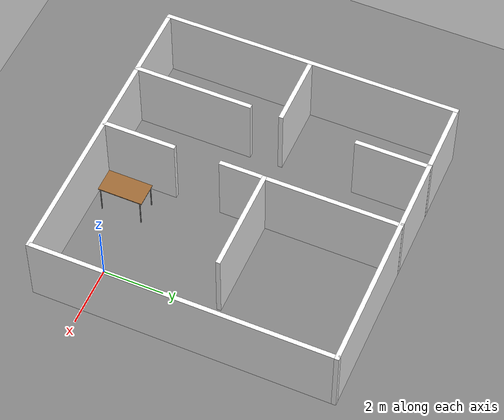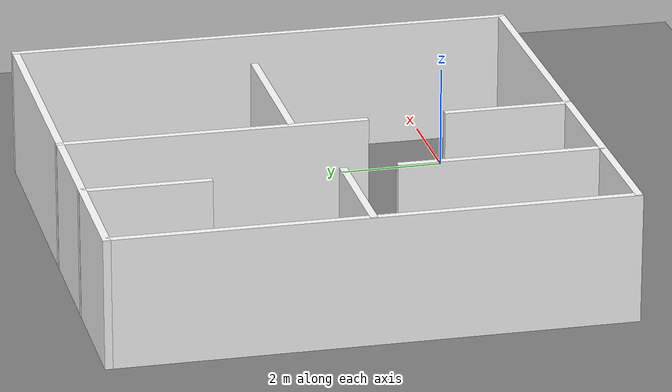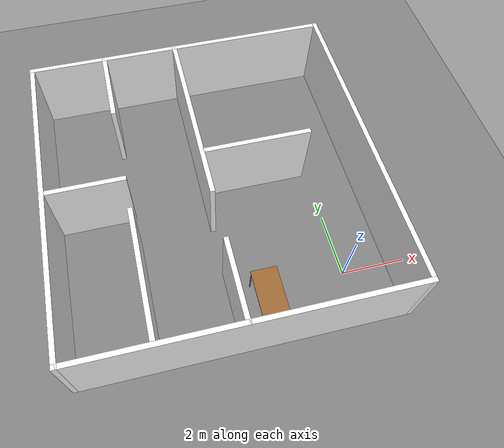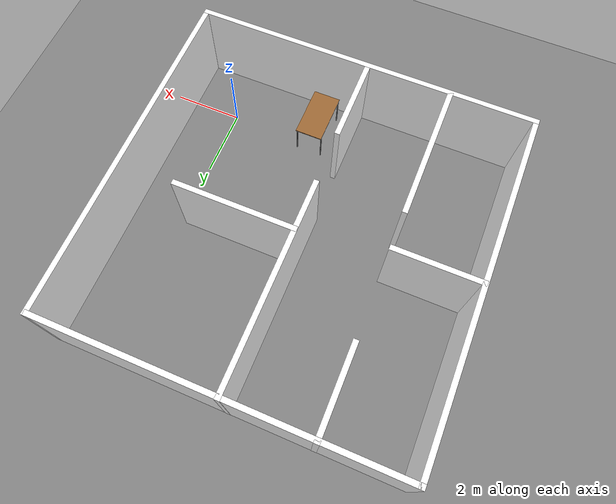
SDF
<sdf version='1.11'>
  <world name='empty'>
    <physics name='10ms' type='ode'>
      <max_step_size>0.01</max_step_size>
      <real_time_factor>1</real_time_factor>
      <real_time_update_rate>100</real_time_update_rate>
    </physics>
    <plugin name='gz::sim::systems::Physics' filename='gz-sim-physics-system'/>
    <plugin name='gz::sim::systems::UserCommands' filename='gz-sim-user-commands-system'/>
    <plugin name='gz::sim::systems::SceneBroadcaster' filename='gz-sim-scene-broadcaster-system'/>
    <plugin name='gz::sim::systems::Sensors' filename='libgz-sim-sensors-system.so'>
      <render_engine>ogre2</render_engine>
    </plugin>
    <plugin name='gz::sim::systems::Contact' filename='libgz-sim-contact-system.so'/>
    <scene>
      <ambient>1 1 1 1</ambient>
      <background>0.800000012 0.800000012 0.800000012 1</background>
      <shadows>true</shadows>
    </scene>
    <gravity>0 0 -9.8000000000000007</gravity>
    <magnetic_field>5.5644999999999998e-06 2.2875799999999999e-05 -4.2388400000000002e-05</magnetic_field>
    <atmosphere type='adiabatic'/>

    <model name='ground_plane'>
      <static>true</static>
      <link name='link'>
        <collision name='collision'>
          <geometry>
            <plane>
              <normal>0 0 1</normal>
              <size>100 100</size>
            </plane>
          </geometry>
          <surface>
            <friction>
              <ode/>
            </friction>
            <bounce/>
            <contact/>
          </surface>
        </collision>
        <visual name='visual'>
          <cast_shadows>false</cast_shadows>
          <geometry>
            <plane>
              <normal>0 0 1</normal>
              <size>100 100</size>
            </plane>
          </geometry>
          <material>
            <ambient>0.5 0.5 0.5 1</ambient>
            <diffuse>0.5 0.5 0.5 1</diffuse>
            <specular>0 0 0 1</specular>
          </material>
        </visual>
        <pose>0 0 0 0 0 0</pose>
        <inertial>
          <pose>0 0 0 0 0 0</pose>
          <mass>1</mass>
          <inertia>
            <ixx>1</ixx>
            <ixy>0</ixy>
            <ixz>0</ixz>
            <iyy>1</iyy>
            <iyz>0</iyz>
            <izz>1</izz>
          </inertia>
        </inertial>
        <enable_wind>false</enable_wind>
      </link>
      <pose>0 0 0 0 0 0</pose>
      <self_collide>false</self_collide>
    </model>

    <model name='Verlab'>
      <pose>-3.3421907424926758 3.3355200290679932 0 0 0 0</pose>
      <link name='Wall_1'>
        <collision name='Wall_1_Collision'>
          <geometry>
            <box>
              <size>10 0.14999999999999999 2.5</size>
            </box>
          </geometry>
          <pose>0 0 1.25 0 0 0</pose>
          <surface>
            <friction>
              <ode/>
            </friction>
            <bounce/>
            <contact/>
          </surface>
        </collision>
        <visual name='Wall_1_Visual'>
          <pose>0 0 1.25 0 0 0</pose>
          <geometry>
            <box>
              <size>10 0.14999999999999999 2.5</size>
            </box>
          </geometry>
          <material>
            <ambient>1 1 1 1</ambient>
            <diffuse>1 1 1 1</diffuse>
            <specular>0 0 0 1</specular>
          </material>
          <meta>
            <layer>0</layer>
          </meta>
        </visual>
        <pose>-0.119159 -4.9273600000000002 0 0 0 0</pose>
        <inertial>
          <pose>0 0 0 0 0 0</pose>
          <mass>1</mass>
          <inertia>
            <ixx>1</ixx>
            <ixy>0</ixy>
            <ixz>0</ixz>
            <iyy>1</iyy>
            <iyz>0</iyz>
            <izz>1</izz>
          </inertia>
        </inertial>
        <enable_wind>false</enable_wind>
      </link>
      <link name='Wall_11'>
        <collision name='Wall_11_Collision'>
          <geometry>
            <box>
              <size>2.5 0.14999999999999999 2.5</size>
            </box>
          </geometry>
          <pose>0 0 1.25 0 0 0</pose>
          <surface>
            <friction>
              <ode/>
            </friction>
            <bounce/>
            <contact/>
          </surface>
        </collision>
        <visual name='Wall_11_Visual'>
          <pose>0 0 1.25 0 0 0</pose>
          <geometry>
            <box>
              <size>2.5 0.14999999999999999 2.5</size>
            </box>
          </geometry>
          <material>
            <ambient>1 1 1 1</ambient>
            <diffuse>1 1 1 1</diffuse>
            <specular>0 0 0 1</specular>
          </material>
          <meta>
            <layer>0</layer>
          </meta>
        </visual>
        <pose>-2.6466599999999998 3.7523600000000004 0 0 0 -1.5708000000000013</pose>
        <inertial>
          <pose>0 0 0 0 0 0</pose>
          <mass>1</mass>
          <inertia>
            <ixx>1</ixx>
            <ixy>0</ixy>
            <ixz>0</ixz>
            <iyy>1</iyy>
            <iyz>0</iyz>
            <izz>1</izz>
          </inertia>
        </inertial>
        <enable_wind>false</enable_wind>
      </link>
      <link name='Wall_16'>
        <collision name='Wall_16_Collision'>
          <geometry>
            <box>
              <size>2.5 0.14999999999999999 2.5</size>
            </box>
          </geometry>
          <pose>0 0 1.25 0 0 0</pose>
          <surface>
            <friction>
              <ode/>
            </friction>
            <bounce/>
            <contact/>
          </surface>
        </collision>
        <visual name='Wall_16_Visual'>
          <pose>0 0 1.25 0 0 0</pose>
          <geometry>
            <box>
              <size>2.5 0.14999999999999999 2.5</size>
            </box>
          </geometry>
          <material>
            <ambient>1 1 1 1</ambient>
            <diffuse>1 1 1 1</diffuse>
            <specular>0 0 0 1</specular>
          </material>
          <meta>
            <layer>0</layer>
          </meta>
        </visual>
        <pose>-3.8406600000000006 0.028361999999999998 0 0 0 0</pose>
        <inertial>
          <pose>0 0 0 0 0 0</pose>
          <mass>1</mass>
          <inertia>
            <ixx>1</ixx>
            <ixy>0</ixy>
            <ixz>0</ixz>
            <iyy>1</iyy>
            <iyz>0</iyz>
            <izz>1</izz>
          </inertia>
        </inertial>
        <enable_wind>false</enable_wind>
      </link>
      <link name='Wall_18'>
        <collision name='Wall_18_Collision'>
          <geometry>
            <box>
              <size>4 0.14999999999999999 2.5</size>
            </box>
          </geometry>
          <pose>0 0 1.25 0 0 0</pose>
          <surface>
            <friction>
              <ode/>
            </friction>
            <bounce/>
            <contact/>
          </surface>
        </collision>
        <visual name='Wall_18_Visual'>
          <pose>0 0 1.25 0 0 0</pose>
          <geometry>
            <box>
              <size>4 0.14999999999999999 2.5</size>
            </box>
          </geometry>
          <material>
            <ambient>1 1 1 1</ambient>
            <diffuse>1 1 1 1</diffuse>
            <specular>0 0 0 1</specular>
          </material>
          <meta>
            <layer>0</layer>
          </meta>
        </visual>
        <pose>-2.6351599999999999 -2.9916399999999999 0 0 0 1.5708000000000013</pose>
        <inertial>
          <pose>0 0 0 0 0 0</pose>
          <mass>1</mass>
          <inertia>
            <ixx>1</ixx>
            <ixy>0</ixy>
            <ixz>0</ixz>
            <iyy>1</iyy>
            <iyz>0</iyz>
            <izz>1</izz>
          </inertia>
        </inertial>
        <enable_wind>false</enable_wind>
      </link>
      <link name='Wall_2'>
        <collision name='Wall_2_Collision'>
          <geometry>
            <box>
              <size>10 0.14999999999999999 2.5</size>
            </box>
          </geometry>
          <pose>0 0 1.25 0 0 0</pose>
          <surface>
            <friction>
              <ode/>
            </friction>
            <bounce/>
            <contact/>
          </surface>
        </collision>
        <visual name='Wall_2_Visual'>
          <pose>0 0 1.25 0 0 0</pose>
          <geometry>
            <box>
              <size>10 0.14999999999999999 2.5</size>
            </box>
          </geometry>
          <material>
            <ambient>1 1 1 1</ambient>
            <diffuse>1 1 1 1</diffuse>
            <specular>0 0 0 1</specular>
          </material>
          <meta>
            <layer>0</layer>
          </meta>
        </visual>
        <pose>4.8058399999999999 -0.0023620000000001973 0 0 0 1.5708000000000013</pose>
        <inertial>
          <pose>0 0 0 0 0 0</pose>
          <mass>1</mass>
          <inertia>
            <ixx>1</ixx>
            <ixy>0</ixy>
            <ixz>0</ixz>
            <iyy>1</iyy>
            <iyz>0</iyz>
            <izz>1</izz>
          </inertia>
        </inertial>
        <enable_wind>false</enable_wind>
      </link>
      <link name='Wall_24'>
        <collision name='Wall_24_Collision'>
          <geometry>
            <box>
              <size>6 0.14999999999999999 2.5</size>
            </box>
          </geometry>
          <pose>0 0 1.25 0 0 0</pose>
          <surface>
            <friction>
              <ode/>
            </friction>
            <bounce/>
            <contact/>
          </surface>
        </collision>
        <visual name='Wall_24_Visual'>
          <pose>0 0 1.25 0 0 0</pose>
          <geometry>
            <box>
              <size>6 0.14999999999999999 2.5</size>
            </box>
          </geometry>
          <material>
            <ambient>1 1 1 1</ambient>
            <diffuse>1 1 1 1</diffuse>
            <specular>0 0 0 1</specular>
          </material>
          <meta>
            <layer>0</layer>
          </meta>
        </visual>
        <pose>-0.24315700000000007 2.0023600000000004 0 0 0 -1.5708000000000013</pose>
        <inertial>
          <pose>0 0 0 0 0 0</pose>
          <mass>1</mass>
          <inertia>
            <ixx>1</ixx>
            <ixy>0</ixy>
            <ixz>0</ixz>
            <iyy>1</iyy>
            <iyz>0</iyz>
            <izz>1</izz>
          </inertia>
        </inertial>
        <enable_wind>false</enable_wind>
      </link>
      <link name='Wall_28'>
        <collision name='Wall_28_Collision'>
          <geometry>
            <box>
              <size>2.5 0.14999999999999999 2.5</size>
            </box>
          </geometry>
          <pose>0 0 1.25 0 0 0</pose>
          <surface>
            <friction>
              <ode/>
            </friction>
            <bounce/>
            <contact/>
          </surface>
        </collision>
        <visual name='Wall_28_Visual'>
          <pose>0 0 1.25 0 0 0</pose>
          <geometry>
            <box>
              <size>2.5 0.14999999999999999 2.5</size>
            </box>
          </geometry>
          <material>
            <ambient>1 1 1 1</ambient>
            <diffuse>1 1 1 1</diffuse>
            <specular>0 0 0 1</specular>
          </material>
          <meta>
            <layer>0</layer>
          </meta>
        </visual>
        <pose>-0.22015700000000038 -3.7416399999999999 0 0 0 1.5708000000000013</pose>
        <inertial>
          <pose>0 0 0 0 0 0</pose>
          <mass>1</mass>
          <inertia>
            <ixx>1</ixx>
            <ixy>0</ixy>
            <ixz>0</ixz>
            <iyy>1</iyy>
            <iyz>0</iyz>
            <izz>1</izz>
          </inertia>
        </inertial>
        <enable_wind>false</enable_wind>
      </link>
      <link name='Wall_3'>
        <collision name='Wall_3_Collision'>
          <geometry>
            <box>
              <size>10 0.14999999999999999 2.5</size>
            </box>
          </geometry>
          <pose>0 0 1.25 0 0 0</pose>
          <surface>
            <friction>
              <ode/>
            </friction>
            <bounce/>
            <contact/>
          </surface>
        </collision>
        <visual name='Wall_3_Visual'>
          <pose>0 0 1.25 0 0 0</pose>
          <geometry>
            <box>
              <size>10 0.14999999999999999 2.5</size>
            </box>
          </geometry>
          <material>
            <ambient>1 1 1 1</ambient>
            <diffuse>1 1 1 1</diffuse>
            <specular>0 0 0 1</specular>
          </material>
          <meta>
            <layer>0</layer>
          </meta>
        </visual>
        <pose>-0.11915899999999979 4.9226400000000012 0 0 0 3.1415899999999999</pose>
        <inertial>
          <pose>0 0 0 0 0 0</pose>
          <mass>1</mass>
          <inertia>
            <ixx>1</ixx>
            <ixy>0</ixy>
            <ixz>0</ixz>
            <iyy>1</iyy>
            <iyz>0</iyz>
            <izz>1</izz>
          </inertia>
        </inertial>
        <enable_wind>false</enable_wind>
      </link>
      <link name='Wall_36'>
        <collision name='Wall_36_Collision'>
          <geometry>
            <box>
              <size>3.5 0.14999999999999999 2.5</size>
            </box>
          </geometry>
          <pose>0 0 1.25 0 0 0</pose>
          <surface>
            <friction>
              <ode/>
            </friction>
            <bounce/>
            <contact/>
          </surface>
        </collision>
        <visual name='Wall_36_Visual'>
          <pose>0 0 1.25 0 0 0</pose>
          <geometry>
            <box>
              <size>3.5 0.14999999999999999 2.5</size>
            </box>
          </geometry>
          <material>
            <ambient>1 1 1 1</ambient>
            <diffuse>1 1 1 1</diffuse>
            <specular>0 0 0 1</specular>
          </material>
          <meta>
            <layer>0</layer>
          </meta>
        </visual>
        <pose>1.4433400000000001 0.47686200000000012 0 0 0 0</pose>
        <inertial>
          <pose>0 0 0 0 0 0</pose>
          <mass>1</mass>
          <inertia>
            <ixx>1</ixx>
            <ixy>0</ixy>
            <ixz>0</ixz>
            <iyy>1</iyy>
            <iyz>0</iyz>
            <izz>1</izz>
          </inertia>
        </inertial>
        <enable_wind>false</enable_wind>
      </link>
      <link name='Wall_4'>
        <collision name='Wall_4_Collision'>
          <geometry>
            <box>
              <size>10 0.14999999999999999 2.5</size>
            </box>
          </geometry>
          <pose>0 0 1.25 0 0 0</pose>
          <surface>
            <friction>
              <ode/>
            </friction>
            <bounce/>
            <contact/>
          </surface>
        </collision>
        <visual name='Wall_4_Visual'>
          <pose>0 0 1.25 0 0 0</pose>
          <geometry>
            <box>
              <size>10 0.14999999999999999 2.5</size>
            </box>
          </geometry>
          <material>
            <ambient>1 1 1 1</ambient>
            <diffuse>1 1 1 1</diffuse>
            <specular>0 0 0 1</specular>
          </material>
          <meta>
            <layer>0</layer>
          </meta>
        </visual>
        <pose>-5.044159999999998 -0.0023620000000001973 0 0 0 -1.5708000000000013</pose>
        <inertial>
          <pose>0 0 0 0 0 0</pose>
          <mass>1</mass>
          <inertia>
            <ixx>1</ixx>
            <ixy>0</ixy>
            <ixz>0</ixz>
            <iyy>1</iyy>
            <iyz>0</iyz>
            <izz>1</izz>
          </inertia>
        </inertial>
        <enable_wind>false</enable_wind>
      </link>
      <static>true</static>
      <self_collide>false</self_collide>
    </model>

    <model name='mesa'>
      <static>true</static>
      <link name='link'>
        <collision name='surface'>
          <pose>0 0 1 0 0 0</pose>
          <geometry>
            <box>
              <size>1.5 0.80000000000000004 0.029999999999999999</size>
            </box>
          </geometry>
          <surface>
            <friction>
              <ode>
                <mu>0.59999999999999998</mu>
                <mu2>0.59999999999999998</mu2>
              </ode>
            </friction>
            <bounce/>
            <contact/>
          </surface>
        </collision>
        <visual name='visual1'>
          <pose>0 0 1 0 0 0</pose>
          <geometry>
            <box>
              <size>1.5 0.80000000000000004 0.029999999999999999</size>
            </box>
          </geometry>
          <material>
            <ambient>0.3 0.2 0.1 1</ambient>
            <diffuse>0.6 0.4 0.2 1</diffuse>
            <specular>0.2 0.2 0.1 1</specular>
          </material>
        </visual>
        <collision name='front_left_leg'>
          <pose>0.68000000000000005 0.38 0.5 0 0 0</pose>
          <geometry>
            <cylinder>
              <radius>0.02</radius>
              <length>1</length>
            </cylinder>
          </geometry>
          <surface>
            <friction>
              <ode/>
            </friction>
            <bounce/>
            <contact/>
          </surface>
        </collision>
        <visual name='front_left_leg'>
          <pose>0.68000000000000005 0.38 0.5 0 0 0</pose>
          <geometry>
            <cylinder>
              <radius>0.02</radius>
              <length>1</length>
            </cylinder>
          </geometry>
          <material>
            <ambient>0.1 0.1 0.1 1</ambient>
            <diffuse>0.1 0.1 0.1 1</diffuse>
            <specular>0.1 0.1 0.1 1</specular>
          </material>
        </visual>
        <collision name='front_right_leg'>
          <pose>0.68000000000000005 -0.38 0.5 0 0 0</pose>
          <geometry>
            <cylinder>
              <radius>0.02</radius>
              <length>1</length>
            </cylinder>
          </geometry>
          <surface>
            <friction>
              <ode/>
            </friction>
            <bounce/>
            <contact/>
          </surface>
        </collision>
        <visual name='front_right_leg'>
          <pose>0.68000000000000005 -0.38 0.5 0 0 0</pose>
          <geometry>
            <cylinder>
              <radius>0.02</radius>
              <length>1</length>
            </cylinder>
          </geometry>
          <material>
            <ambient>0.1 0.1 0.1 1</ambient>
            <diffuse>0.1 0.1 0.1 1</diffuse>
            <specular>0.1 0.1 0.1 1</specular>
          </material>
        </visual>
        <collision name='back_right_leg'>
          <pose>-0.68000000000000005 -0.38 0.5 0 0 0</pose>
          <geometry>
            <cylinder>
              <radius>0.02</radius>
              <length>1</length>
            </cylinder>
          </geometry>
          <surface>
            <friction>
              <ode/>
            </friction>
            <bounce/>
            <contact/>
          </surface>
        </collision>
        <visual name='back_right_leg'>
          <pose>-0.68000000000000005 -0.38 0.5 0 0 0</pose>
          <geometry>
            <cylinder>
              <radius>0.02</radius>
              <length>1</length>
            </cylinder>
          </geometry>
          <material>
            <ambient>0.1 0.1 0.1 1</ambient>
            <diffuse>0.1 0.1 0.1 1</diffuse>
            <specular>0.1 0.1 0.1 1</specular>
          </material>
        </visual>
        <collision name='back_left_leg'>
          <pose>-0.68000000000000005 0.38 0.5 0 0 0</pose>
          <geometry>
            <cylinder>
              <radius>0.02</radius>
              <length>1</length>
            </cylinder>
          </geometry>
          <surface>
            <friction>
              <ode/>
            </friction>
            <bounce/>
            <contact/>
          </surface>
        </collision>
        <visual name='back_left_leg'>
          <pose>-0.68000000000000005 0.38 0.5 0 0 0</pose>
          <geometry>
            <cylinder>
              <radius>0.02</radius>
              <length>1</length>
            </cylinder>
          </geometry>
          <material>
            <ambient>0.1 0.1 0.1 1</ambient>
            <diffuse>0.1 0.1 0.1 1</diffuse>
            <specular>0.1 0.1 0.1 1</specular>
          </material>
        </visual>
        <pose>0 0 0 0 0 0</pose>
        <inertial>
          <pose>0 0 0 0 0 0</pose>
          <mass>1</mass>
          <inertia>
            <ixx>1</ixx>
            <ixy>0</ixy>
            <ixz>0</ixz>
            <iyy>1</iyy>
            <iyz>0</iyz>
            <izz>1</izz>
          </inertia>
        </inertial>
        <enable_wind>false</enable_wind>
      </link>
      <pose>-2.5431599617004395 -0.44399899244308472 0 0 0 1.5668200219809636</pose>
      <self_collide>false</self_collide>
    </model>

    <light name='sun' type='directional'>
      <pose>0 0 10 0 0 0</pose>
      <cast_shadows>true</cast_shadows>
      <intensity>1</intensity>
      <direction>-0.5 0.10000000000000001 -0.90000000000000002</direction>
      <diffuse>0.800000012 0.800000012 0.800000012 1</diffuse>
      <specular>0.200000003 0.200000003 0.200000003 1</specular>
      <attenuation>
        <range>1000</range>
        <linear>0.01</linear>
        <constant>0.90000000000000002</constant>
        <quadratic>0.001</quadratic>
      </attenuation>
      <spot>
        <inner_angle>0</inner_angle>
        <outer_angle>0</outer_angle>
        <falloff>0</falloff>
      </spot>
    </light>
  </world>
</sdf>
